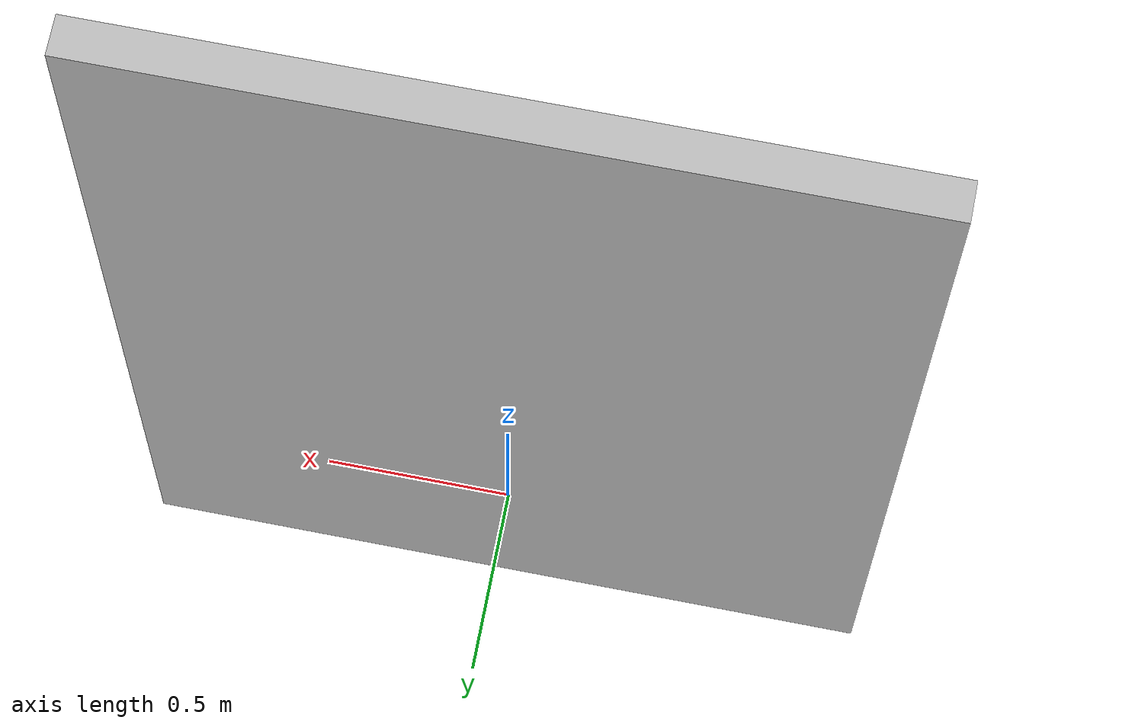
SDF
<?xml version="1.0" ?>
<sdf version="1.6">
  <model name="placard">
    <pose>0 0 1 0 0 0</pose>
    <static>true</static>
     <!-- The white placard -->
    <link name="link">
      <inertial>
        <mass>1</mass>
        <inertia>
          <ixx>0.0075083</ixx>
          <ixy>0</ixy>
          <ixz>0</ixz>
          <iyy>0.0108333</iyy>
          <iyz>0</iyz>
          <izz>0.0033417</izz>
        </inertia>
      </inertial>
      <collision name="collision">
        <geometry>
          <box>
            <size>2 0.1 3</size>
          </box>
        </geometry>
      </collision>
      <visual name="visual">
        <geometry>
          <box>
            <size>2 0.1 3</size>
          </box>
        </geometry>
      </visual>
    </link>
  </model>
</sdf>
